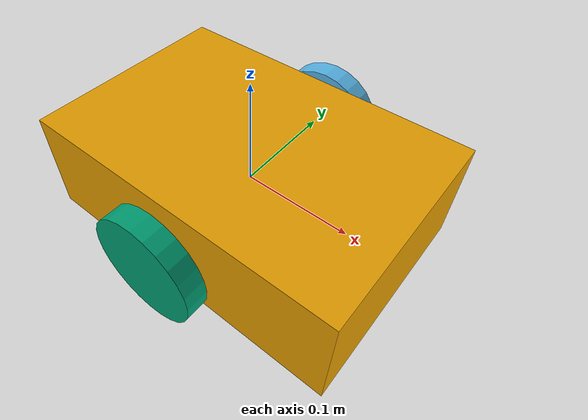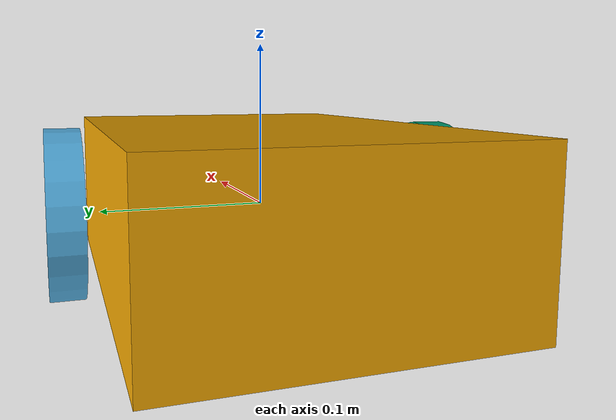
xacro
<?xml version="1.0"?>
<robot xmlns:xacro="http://www.ros.org/wiki/xacro" name="diff_drive_robot">

  <!-- Base Link -->
  <link name="base_link">
    <visual>
      <geometry>
        <box size="0.3 0.2 0.1"/>
      </geometry>
    </visual>
    <collision>
      <geometry>
        <box size="0.3 0.2 0.1"/>
      </geometry>
    </collision>
    <inertial>
      <mass value="5.0"/>
      <inertia ixx="0.01" ixy="0" ixz="0" iyy="0.01" iyz="0" izz="0.01"/>
    </inertial>
  </link>

  <!-- Left Wheel -->
  <link name="left_wheel">
    <visual>
      <geometry>
        <cylinder radius="0.05" length="0.02"/>
      </geometry>
    </visual>
    <collision>
      <geometry>
        <cylinder radius="0.05" length="0.02"/>
      </geometry>
    </collision>
    <inertial>
      <mass value="0.5"/>
      <inertia ixx="0.001" ixy="0" ixz="0" iyy="0.001" iyz="0" izz="0.001"/>
    </inertial>
  </link>

  <joint name="left_wheel_joint" type="continuous">
    <parent link="base_link"/>
    <child link="left_wheel"/>
    <origin xyz="0 0.12 0" rpy="${-pi/2} 0 0"/>
    <axis xyz="0 0 1"/>
  </joint>

  <!-- Right Wheel -->
  <link name="right_wheel">
    <visual>
      <geometry>
        <cylinder radius="0.05" length="0.02"/>
      </geometry>
    </visual>
    <collision>
      <geometry>
        <cylinder radius="0.05" length="0.02"/>
      </geometry>
    </collision>
    <inertial>
      <mass value="0.5"/>
      <inertia ixx="0.001" ixy="0" ixz="0" iyy="0.001" iyz="0" izz="0.001"/>
    </inertial>
  </link>

  <joint name="right_wheel_joint" type="continuous">
    <parent link="base_link"/>
    <child link="right_wheel"/>
    <origin xyz="0 -0.12 0" rpy="${-pi/2} 0 0"/>
    <axis xyz="0 0 1"/>
  </joint>

  <!-- ros2_control hardware interface -->
  <ros2_control name="DiffDriveSystem" type="system">
    <hardware>
      <plugin>mock_components/GenericSystem</plugin>
      <param name="calculate_dynamics">true</param>
    </hardware>
    <joint name="left_wheel_joint">
      <command_interface name="velocity"/>
      <state_interface name="position"/>
      <state_interface name="velocity"/>
    </joint>
    <joint name="right_wheel_joint">
      <command_interface name="velocity"/>
      <state_interface name="position"/>
      <state_interface name="velocity"/>
    </joint>
  </ros2_control>

</robot>
